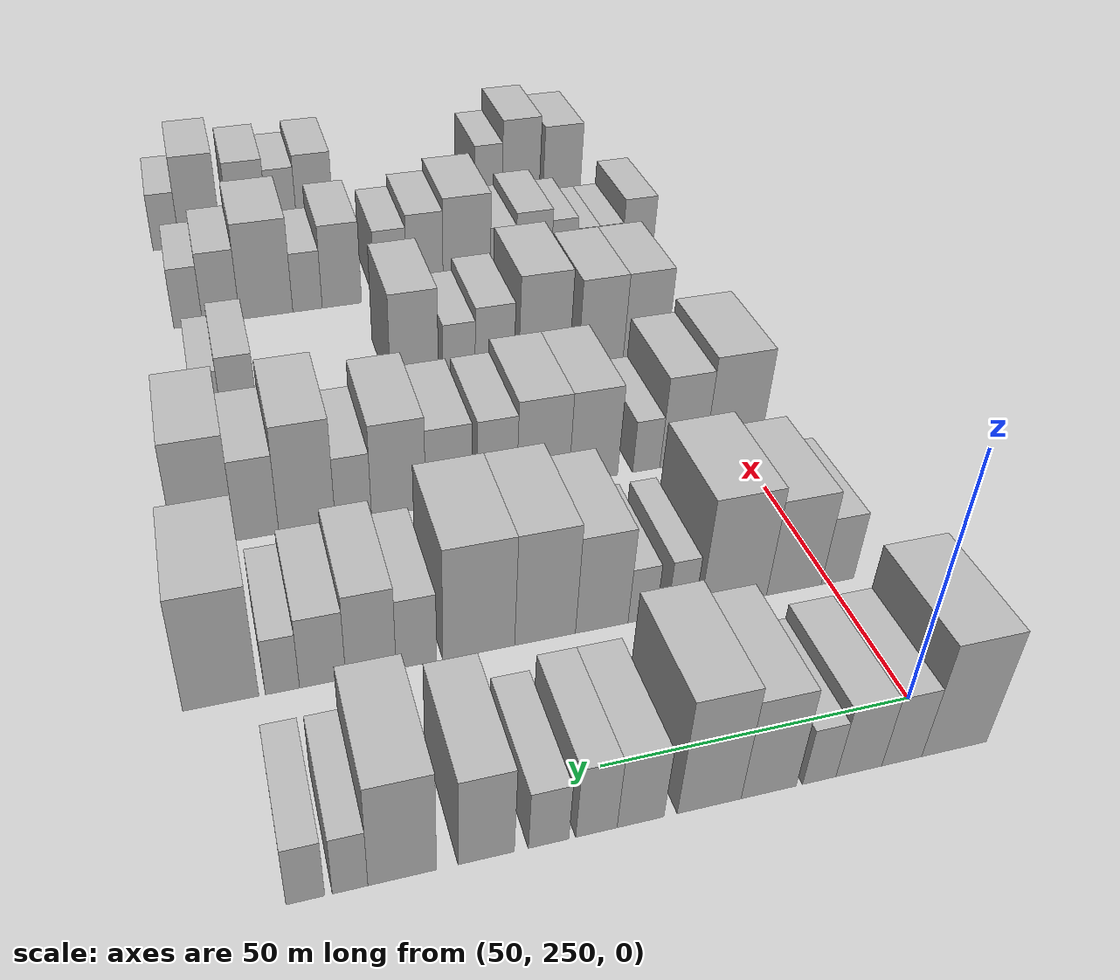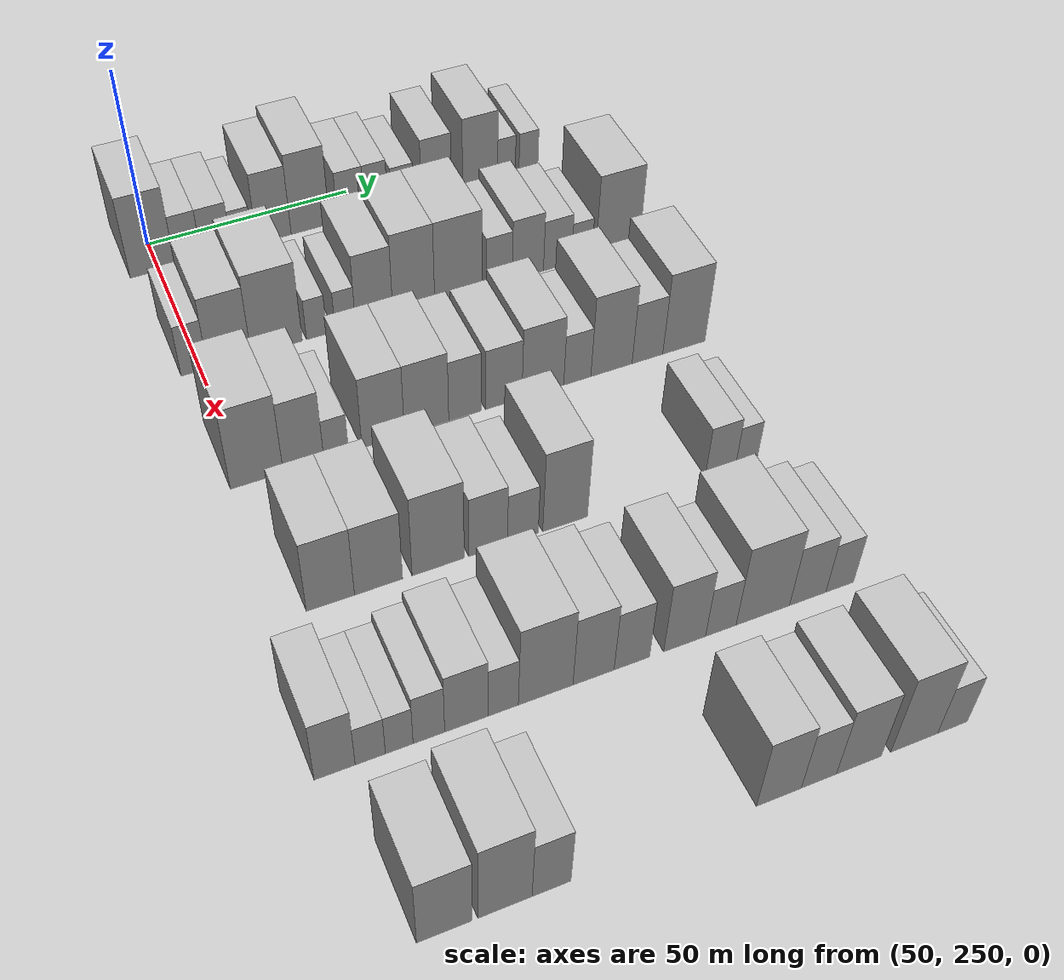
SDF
<sdf version="1.6">
 <world name="default">
  <model name="building_92">
   <static>1</static>
   <pose>50.0000 248.4518 0 0.000000 0.000000 0.000000</pose>
   <link name="link">
    <pose>0 0 12.00 0 0 0</pose>
    <collision name="collision"><geometry><box><size>20.0000 10.7724 24.0000</size></box></geometry></collision>
    <visual name="visual">
     <cast_shadows>0</cast_shadows>
     <geometry><box><size>20.0000 10.7724 24.0000</size></box></geometry>
     <material>
      <script>
       <uri>model://HANNAS_wall/materials/scripts</uri>
       <uri>model://HANNAS_wall/materials/textures</uri>
       <name>vrc/HANNAS_wall</name>
      </script>
     </material>
    </visual>
   </link>
  </model>
  <model name="building_93">
   <static>1</static>
   <pose>50.0000 257.0807 0 0.000000 0.000000 0.000000</pose>
   <link name="link">
    <pose>0 0 7.50 0 0 0</pose>
    <collision name="collision"><geometry><box><size>20.0000 6.4854 15.0000</size></box></geometry></collision>
    <visual name="visual">
     <cast_shadows>0</cast_shadows>
     <geometry><box><size>20.0000 6.4854 15.0000</size></box></geometry>
     <material>
      <script>
       <uri>model://HANNAS_wall/materials/scripts</uri>
       <uri>model://HANNAS_wall/materials/textures</uri>
       <name>vrc/HANNAS_wall</name>
      </script>
     </material>
    </visual>
   </link>
  </model>
  <model name="building_94">
   <static>1</static>
   <pose>50.0000 263.9991 0 0.000000 0.000000 0.000000</pose>
   <link name="link">
    <pose>0 0 7.50 0 0 0</pose>
    <collision name="collision"><geometry><box><size>20.0000 7.3515 15.0000</size></box></geometry></collision>
    <visual name="visual">
     <cast_shadows>0</cast_shadows>
     <geometry><box><size>20.0000 7.3515 15.0000</size></box></geometry>
     <material>
      <script>
       <uri>model://HANNAS_wall/materials/scripts</uri>
       <uri>model://HANNAS_wall/materials/textures</uri>
       <name>vrc/HANNAS_wall</name>
      </script>
     </material>
    </visual>
   </link>
  </model>
  <model name="building_95">
   <static>1</static>
   <pose>50.0000 270.3129 0 0.000000 0.000000 0.000000</pose>
   <link name="link">
    <pose>0 0 6.00 0 0 0</pose>
    <collision name="collision"><geometry><box><size>20.0000 5.2760 12.0000</size></box></geometry></collision>
    <visual name="visual">
     <cast_shadows>0</cast_shadows>
     <geometry><box><size>20.0000 5.2760 12.0000</size></box></geometry>
     <material>
      <script>
       <uri>model://HANNAS_wall/materials/scripts</uri>
       <uri>model://HANNAS_wall/materials/textures</uri>
       <name>vrc/HANNAS_wall</name>
      </script>
     </material>
    </visual>
   </link>
  </model>
  <model name="building_96">
   <static>1</static>
   <pose>50.0000 278.2379 0 0.000000 0.000000 0.000000</pose>
   <link name="link">
    <pose>0 0 10.50 0 0 0</pose>
    <collision name="collision"><geometry><box><size>20.0000 8.5740 21.0000</size></box></geometry></collision>
    <visual name="visual">
     <cast_shadows>0</cast_shadows>
     <geometry><box><size>20.0000 8.5740 21.0000</size></box></geometry>
     <material>
      <script>
       <uri>model://HANNAS_wall/materials/scripts</uri>
       <uri>model://HANNAS_wall/materials/textures</uri>
       <name>vrc/HANNAS_wall</name>
      </script>
     </material>
    </visual>
   </link>
  </model>
  <model name="building_97">
   <static>1</static>
   <pose>50.0000 287.3796 0 0.000000 0.000000 0.000000</pose>
   <link name="link">
    <pose>0 0 12.00 0 0 0</pose>
    <collision name="collision"><geometry><box><size>20.0000 9.7094 24.0000</size></box></geometry></collision>
    <visual name="visual">
     <cast_shadows>0</cast_shadows>
     <geometry><box><size>20.0000 9.7094 24.0000</size></box></geometry>
     <material>
      <script>
       <uri>model://HANNAS_wall/materials/scripts</uri>
       <uri>model://HANNAS_wall/materials/textures</uri>
       <name>vrc/HANNAS_wall</name>
      </script>
     </material>
    </visual>
   </link>
  </model>
  <model name="building_98">
   <static>1</static>
   <pose>50.0000 297.7148 0 0.000000 0.000000 0.000000</pose>
   <link name="link">
    <pose>0 0 7.50 0 0 0</pose>
    <collision name="collision"><geometry><box><size>20.0000 6.9610 15.0000</size></box></geometry></collision>
    <visual name="visual">
     <cast_shadows>0</cast_shadows>
     <geometry><box><size>20.0000 6.9610 15.0000</size></box></geometry>
     <material>
      <script>
       <uri>model://HANNAS_wall/materials/scripts</uri>
       <uri>model://HANNAS_wall/materials/textures</uri>
       <name>vrc/HANNAS_wall</name>
      </script>
     </material>
    </visual>
   </link>
  </model>
  <model name="building_99">
   <static>1</static>
   <pose>50.0000 304.2249 0 0.000000 0.000000 0.000000</pose>
   <link name="link">
    <pose>0 0 7.50 0 0 0</pose>
    <collision name="collision"><geometry><box><size>20.0000 6.0593 15.0000</size></box></geometry></collision>
    <visual name="visual">
     <cast_shadows>0</cast_shadows>
     <geometry><box><size>20.0000 6.0593 15.0000</size></box></geometry>
     <material>
      <script>
       <uri>model://HANNAS_wall/materials/scripts</uri>
       <uri>model://HANNAS_wall/materials/textures</uri>
       <name>vrc/HANNAS_wall</name>
      </script>
     </material>
    </visual>
   </link>
  </model>
  <model name="building_100">
   <static>1</static>
   <pose>50.0000 311.1661 0 0.000000 0.000000 0.000000</pose>
   <link name="link">
    <pose>0 0 6.00 0 0 0</pose>
    <collision name="collision"><geometry><box><size>20.0000 5.8230 12.0000</size></box></geometry></collision>
    <visual name="visual">
     <cast_shadows>0</cast_shadows>
     <geometry><box><size>20.0000 5.8230 12.0000</size></box></geometry>
     <material>
      <script>
       <uri>model://HANNAS_wall/materials/scripts</uri>
       <uri>model://HANNAS_wall/materials/textures</uri>
       <name>vrc/HANNAS_wall</name>
      </script>
     </material>
    </visual>
   </link>
  </model>
  <model name="building_101">
   <static>1</static>
   <pose>50.0000 320.0437 0 0.000000 0.000000 0.000000</pose>
   <link name="link">
    <pose>0 0 9.00 0 0 0</pose>
    <collision name="collision"><geometry><box><size>20.0000 7.9321 18.0000</size></box></geometry></collision>
    <visual name="visual">
     <cast_shadows>0</cast_shadows>
     <geometry><box><size>20.0000 7.9321 18.0000</size></box></geometry>
     <material>
      <script>
       <uri>model://HANNAS_wall/materials/scripts</uri>
       <uri>model://HANNAS_wall/materials/textures</uri>
       <name>vrc/HANNAS_wall</name>
      </script>
     </material>
    </visual>
   </link>
  </model>
  <model name="building_102">
   <static>1</static>
   <pose>50.0000 331.7109 0 0.000000 0.000000 0.000000</pose>
   <link name="link">
    <pose>0 0 10.50 0 0 0</pose>
    <collision name="collision"><geometry><box><size>20.0000 9.4024 21.0000</size></box></geometry></collision>
    <visual name="visual">
     <cast_shadows>0</cast_shadows>
     <geometry><box><size>20.0000 9.4024 21.0000</size></box></geometry>
     <material>
      <script>
       <uri>model://HANNAS_wall/materials/scripts</uri>
       <uri>model://HANNAS_wall/materials/textures</uri>
       <name>vrc/HANNAS_wall</name>
      </script>
     </material>
    </visual>
   </link>
  </model>
  <model name="building_103">
   <static>1</static>
   <pose>50.0000 338.8149 0 0.000000 0.000000 0.000000</pose>
   <link name="link">
    <pose>0 0 6.00 0 0 0</pose>
    <collision name="collision"><geometry><box><size>20.0000 4.8056 12.0000</size></box></geometry></collision>
    <visual name="visual">
     <cast_shadows>0</cast_shadows>
     <geometry><box><size>20.0000 4.8056 12.0000</size></box></geometry>
     <material>
      <script>
       <uri>model://HANNAS_wall/materials/scripts</uri>
       <uri>model://HANNAS_wall/materials/textures</uri>
       <name>vrc/HANNAS_wall</name>
      </script>
     </material>
    </visual>
   </link>
  </model>
  <model name="building_104">
   <static>1</static>
   <pose>50.0000 344.7983 0 0.000000 0.000000 0.000000</pose>
   <link name="link">
    <pose>0 0 6.00 0 0 0</pose>
    <collision name="collision"><geometry><box><size>20.0000 5.1613 12.0000</size></box></geometry></collision>
    <visual name="visual">
     <cast_shadows>0</cast_shadows>
     <geometry><box><size>20.0000 5.1613 12.0000</size></box></geometry>
     <material>
      <script>
       <uri>model://HANNAS_wall/materials/scripts</uri>
       <uri>model://HANNAS_wall/materials/textures</uri>
       <name>vrc/HANNAS_wall</name>
      </script>
     </material>
    </visual>
   </link>
  </model>
  <model name="building_221">
   <static>1</static>
   <pose>85.0000 248.6380 0 0.000000 0.000000 0.000000</pose>
   <link name="link">
    <pose>0 0 7.50 0 0 0</pose>
    <collision name="collision"><geometry><box><size>20.0000 6.0605 15.0000</size></box></geometry></collision>
    <visual name="visual">
     <cast_shadows>0</cast_shadows>
     <geometry><box><size>20.0000 6.0605 15.0000</size></box></geometry>
     <material>
      <script>
       <uri>model://HANNAS_wall/materials/scripts</uri>
       <uri>model://HANNAS_wall/materials/textures</uri>
       <name>vrc/HANNAS_wall</name>
      </script>
     </material>
    </visual>
   </link>
  </model>
  <model name="building_222">
   <static>1</static>
   <pose>85.0000 256.6987 0 0.000000 0.000000 0.000000</pose>
   <link name="link">
    <pose>0 0 10.50 0 0 0</pose>
    <collision name="collision"><geometry><box><size>20.0000 10.0609 21.0000</size></box></geometry></collision>
    <visual name="visual">
     <cast_shadows>0</cast_shadows>
     <geometry><box><size>20.0000 10.0609 21.0000</size></box></geometry>
     <material>
      <script>
       <uri>model://HANNAS_wall/materials/scripts</uri>
       <uri>model://HANNAS_wall/materials/textures</uri>
       <name>vrc/HANNAS_wall</name>
      </script>
     </material>
    </visual>
   </link>
  </model>
  <model name="building_223">
   <static>1</static>
   <pose>85.0000 267.7092 0 0.000000 0.000000 0.000000</pose>
   <link name="link">
    <pose>0 0 12.00 0 0 0</pose>
    <collision name="collision"><geometry><box><size>20.0000 11.9600 24.0000</size></box></geometry></collision>
    <visual name="visual">
     <cast_shadows>0</cast_shadows>
     <geometry><box><size>20.0000 11.9600 24.0000</size></box></geometry>
     <material>
      <script>
       <uri>model://HANNAS_wall/materials/scripts</uri>
       <uri>model://HANNAS_wall/materials/textures</uri>
       <name>vrc/HANNAS_wall</name>
      </script>
     </material>
    </visual>
   </link>
  </model>
  <model name="building_224">
   <static>1</static>
   <pose>85.0000 277.0991 0 0.000000 0.000000 0.000000</pose>
   <link name="link">
    <pose>0 0 6.00 0 0 0</pose>
    <collision name="collision"><geometry><box><size>20.0000 4.8198 12.0000</size></box></geometry></collision>
    <visual name="visual">
     <cast_shadows>0</cast_shadows>
     <geometry><box><size>20.0000 4.8198 12.0000</size></box></geometry>
     <material>
      <script>
       <uri>model://HANNAS_wall/materials/scripts</uri>
       <uri>model://HANNAS_wall/materials/textures</uri>
       <name>vrc/HANNAS_wall</name>
      </script>
     </material>
    </visual>
   </link>
  </model>
  <model name="building_225">
   <static>1</static>
   <pose>85.0000 283.9612 0 0.000000 0.000000 0.000000</pose>
   <link name="link">
    <pose>0 0 6.00 0 0 0</pose>
    <collision name="collision"><geometry><box><size>20.0000 4.9043 12.0000</size></box></geometry></collision>
    <visual name="visual">
     <cast_shadows>0</cast_shadows>
     <geometry><box><size>20.0000 4.9043 12.0000</size></box></geometry>
     <material>
      <script>
       <uri>model://HANNAS_wall/materials/scripts</uri>
       <uri>model://HANNAS_wall/materials/textures</uri>
       <name>vrc/HANNAS_wall</name>
      </script>
     </material>
    </visual>
   </link>
  </model>
  <model name="building_226">
   <static>1</static>
   <pose>85.0000 290.9372 0 0.000000 0.000000 0.000000</pose>
   <link name="link">
    <pose>0 0 10.50 0 0 0</pose>
    <collision name="collision"><geometry><box><size>20.0000 9.0478 21.0000</size></box></geometry></collision>
    <visual name="visual">
     <cast_shadows>0</cast_shadows>
     <geometry><box><size>20.0000 9.0478 21.0000</size></box></geometry>
     <material>
      <script>
       <uri>model://HANNAS_wall/materials/scripts</uri>
       <uri>model://HANNAS_wall/materials/textures</uri>
       <name>vrc/HANNAS_wall</name>
      </script>
     </material>
    </visual>
   </link>
  </model>
  <model name="building_227">
   <static>1</static>
   <pose>85.0000 300.6031 0 0.000000 0.000000 0.000000</pose>
   <link name="link">
    <pose>0 0 12.00 0 0 0</pose>
    <collision name="collision"><geometry><box><size>20.0000 10.2840 24.0000</size></box></geometry></collision>
    <visual name="visual">
     <cast_shadows>0</cast_shadows>
     <geometry><box><size>20.0000 10.2840 24.0000</size></box></geometry>
     <material>
      <script>
       <uri>model://HANNAS_wall/materials/scripts</uri>
       <uri>model://HANNAS_wall/materials/textures</uri>
       <name>vrc/HANNAS_wall</name>
      </script>
     </material>
    </visual>
   </link>
  </model>
  <model name="building_228">
   <static>1</static>
   <pose>85.0000 311.6784 0 0.000000 0.000000 0.000000</pose>
   <link name="link">
    <pose>0 0 12.00 0 0 0</pose>
    <collision name="collision"><geometry><box><size>20.0000 11.8667 24.0000</size></box></geometry></collision>
    <visual name="visual">
     <cast_shadows>0</cast_shadows>
     <geometry><box><size>20.0000 11.8667 24.0000</size></box></geometry>
     <material>
      <script>
       <uri>model://HANNAS_wall/materials/scripts</uri>
       <uri>model://HANNAS_wall/materials/textures</uri>
       <name>vrc/HANNAS_wall</name>
      </script>
     </material>
    </visual>
   </link>
  </model>
  <model name="building_229">
   <static>1</static>
   <pose>85.0000 321.8944 0 0.000000 0.000000 0.000000</pose>
   <link name="link">
    <pose>0 0 7.50 0 0 0</pose>
    <collision name="collision"><geometry><box><size>20.0000 6.5652 15.0000</size></box></geometry></collision>
    <visual name="visual">
     <cast_shadows>0</cast_shadows>
     <geometry><box><size>20.0000 6.5652 15.0000</size></box></geometry>
     <material>
      <script>
       <uri>model://HANNAS_wall/materials/scripts</uri>
       <uri>model://HANNAS_wall/materials/textures</uri>
       <name>vrc/HANNAS_wall</name>
      </script>
     </material>
    </visual>
   </link>
  </model>
  <model name="building_230">
   <static>1</static>
   <pose>85.0000 329.1814 0 0.000000 0.000000 0.000000</pose>
   <link name="link">
    <pose>0 0 9.00 0 0 0</pose>
    <collision name="collision"><geometry><box><size>20.0000 8.0089 18.0000</size></box></geometry></collision>
    <visual name="visual">
     <cast_shadows>0</cast_shadows>
     <geometry><box><size>20.0000 8.0089 18.0000</size></box></geometry>
     <material>
      <script>
       <uri>model://HANNAS_wall/materials/scripts</uri>
       <uri>model://HANNAS_wall/materials/textures</uri>
       <name>vrc/HANNAS_wall</name>
      </script>
     </material>
    </visual>
   </link>
  </model>
  <model name="building_231">
   <static>1</static>
   <pose>85.0000 336.8193 0 0.000000 0.000000 0.000000</pose>
   <link name="link">
    <pose>0 0 7.50 0 0 0</pose>
    <collision name="collision"><geometry><box><size>20.0000 7.2669 15.0000</size></box></geometry></collision>
    <visual name="visual">
     <cast_shadows>0</cast_shadows>
     <geometry><box><size>20.0000 7.2669 15.0000</size></box></geometry>
     <material>
      <script>
       <uri>model://HANNAS_wall/materials/scripts</uri>
       <uri>model://HANNAS_wall/materials/textures</uri>
       <name>vrc/HANNAS_wall</name>
      </script>
     </material>
    </visual>
   </link>
  </model>
  <model name="building_232">
   <static>1</static>
   <pose>85.0000 343.1009 0 0.000000 0.000000 0.000000</pose>
   <link name="link">
    <pose>0 0 6.00 0 0 0</pose>
    <collision name="collision"><geometry><box><size>20.0000 5.2963 12.0000</size></box></geometry></collision>
    <visual name="visual">
     <cast_shadows>0</cast_shadows>
     <geometry><box><size>20.0000 5.2963 12.0000</size></box></geometry>
     <material>
      <script>
       <uri>model://HANNAS_wall/materials/scripts</uri>
       <uri>model://HANNAS_wall/materials/textures</uri>
       <name>vrc/HANNAS_wall</name>
      </script>
     </material>
    </visual>
   </link>
  </model>
  <model name="building_233">
   <static>1</static>
   <pose>85.0000 352.5402 0 0.000000 0.000000 0.000000</pose>
   <link name="link">
    <pose>0 0 12.00 0 0 0</pose>
    <collision name="collision"><geometry><box><size>20.0000 11.5823 24.0000</size></box></geometry></collision>
    <visual name="visual">
     <cast_shadows>0</cast_shadows>
     <geometry><box><size>20.0000 11.5823 24.0000</size></box></geometry>
     <material>
      <script>
       <uri>model://HANNAS_wall/materials/scripts</uri>
       <uri>model://HANNAS_wall/materials/textures</uri>
       <name>vrc/HANNAS_wall</name>
      </script>
     </material>
    </visual>
   </link>
  </model>
  <model name="building_348">
   <static>1</static>
   <pose>120.0000 252.1516 0 0.000000 0.000000 0.000000</pose>
   <link name="link">
    <pose>0 0 12.00 0 0 0</pose>
    <collision name="collision"><geometry><box><size>20.0000 11.4827 24.0000</size></box></geometry></collision>
    <visual name="visual">
     <cast_shadows>0</cast_shadows>
     <geometry><box><size>20.0000 11.4827 24.0000</size></box></geometry>
     <material>
      <script>
       <uri>model://HANNAS_wall/materials/scripts</uri>
       <uri>model://HANNAS_wall/materials/textures</uri>
       <name>vrc/HANNAS_wall</name>
      </script>
     </material>
    </visual>
   </link>
  </model>
  <model name="building_349">
   <static>1</static>
   <pose>120.0000 262.3679 0 0.000000 0.000000 0.000000</pose>
   <link name="link">
    <pose>0 0 10.50 0 0 0</pose>
    <collision name="collision"><geometry><box><size>20.0000 8.9498 21.0000</size></box></geometry></collision>
    <visual name="visual">
     <cast_shadows>0</cast_shadows>
     <geometry><box><size>20.0000 8.9498 21.0000</size></box></geometry>
     <material>
      <script>
       <uri>model://HANNAS_wall/materials/scripts</uri>
       <uri>model://HANNAS_wall/materials/textures</uri>
       <name>vrc/HANNAS_wall</name>
      </script>
     </material>
    </visual>
   </link>
  </model>
  <model name="building_350">
   <static>1</static>
   <pose>120.0000 269.5847 0 0.000000 0.000000 0.000000</pose>
   <link name="link">
    <pose>0 0 6.00 0 0 0</pose>
    <collision name="collision"><geometry><box><size>20.0000 5.4839 12.0000</size></box></geometry></collision>
    <visual name="visual">
     <cast_shadows>0</cast_shadows>
     <geometry><box><size>20.0000 5.4839 12.0000</size></box></geometry>
     <material>
      <script>
       <uri>model://HANNAS_wall/materials/scripts</uri>
       <uri>model://HANNAS_wall/materials/textures</uri>
       <name>vrc/HANNAS_wall</name>
      </script>
     </material>
    </visual>
   </link>
  </model>
  <model name="building_351">
   <static>1</static>
   <pose>120.0000 280.1430 0 0.000000 0.000000 0.000000</pose>
   <link name="link">
    <pose>0 0 10.50 0 0 0</pose>
    <collision name="collision"><geometry><box><size>20.0000 9.6328 21.0000</size></box></geometry></collision>
    <visual name="visual">
     <cast_shadows>0</cast_shadows>
     <geometry><box><size>20.0000 9.6328 21.0000</size></box></geometry>
     <material>
      <script>
       <uri>model://HANNAS_wall/materials/scripts</uri>
       <uri>model://HANNAS_wall/materials/textures</uri>
       <name>vrc/HANNAS_wall</name>
      </script>
     </material>
    </visual>
   </link>
  </model>
  <model name="building_352">
   <static>1</static>
   <pose>120.0000 290.0397 0 0.000000 0.000000 0.000000</pose>
   <link name="link">
    <pose>0 0 10.50 0 0 0</pose>
    <collision name="collision"><geometry><box><size>20.0000 10.1607 21.0000</size></box></geometry></collision>
    <visual name="visual">
     <cast_shadows>0</cast_shadows>
     <geometry><box><size>20.0000 10.1607 21.0000</size></box></geometry>
     <material>
      <script>
       <uri>model://HANNAS_wall/materials/scripts</uri>
       <uri>model://HANNAS_wall/materials/textures</uri>
       <name>vrc/HANNAS_wall</name>
      </script>
     </material>
    </visual>
   </link>
  </model>
  <model name="building_353">
   <static>1</static>
   <pose>120.0000 298.8995 0 0.000000 0.000000 0.000000</pose>
   <link name="link">
    <pose>0 0 9.00 0 0 0</pose>
    <collision name="collision"><geometry><box><size>20.0000 7.5589 18.0000</size></box></geometry></collision>
    <visual name="visual">
     <cast_shadows>0</cast_shadows>
     <geometry><box><size>20.0000 7.5589 18.0000</size></box></geometry>
     <material>
      <script>
       <uri>model://HANNAS_wall/materials/scripts</uri>
       <uri>model://HANNAS_wall/materials/textures</uri>
       <name>vrc/HANNAS_wall</name>
      </script>
     </material>
    </visual>
   </link>
  </model>
  <model name="building_354">
   <static>1</static>
   <pose>120.0000 307.9807 0 0.000000 0.000000 0.000000</pose>
   <link name="link">
    <pose>0 0 9.00 0 0 0</pose>
    <collision name="collision"><geometry><box><size>20.0000 8.6036 18.0000</size></box></geometry></collision>
    <visual name="visual">
     <cast_shadows>0</cast_shadows>
     <geometry><box><size>20.0000 8.6036 18.0000</size></box></geometry>
     <material>
      <script>
       <uri>model://HANNAS_wall/materials/scripts</uri>
       <uri>model://HANNAS_wall/materials/textures</uri>
       <name>vrc/HANNAS_wall</name>
      </script>
     </material>
    </visual>
   </link>
  </model>
  <model name="building_355">
   <static>1</static>
   <pose>120.0000 317.2840 0 0.000000 0.000000 0.000000</pose>
   <link name="link">
    <pose>0 0 10.50 0 0 0</pose>
    <collision name="collision"><geometry><box><size>20.0000 10.0029 21.0000</size></box></geometry></collision>
    <visual name="visual">
     <cast_shadows>0</cast_shadows>
     <geometry><box><size>20.0000 10.0029 21.0000</size></box></geometry>
     <material>
      <script>
       <uri>model://HANNAS_wall/materials/scripts</uri>
       <uri>model://HANNAS_wall/materials/textures</uri>
       <name>vrc/HANNAS_wall</name>
      </script>
     </material>
    </visual>
   </link>
  </model>
  <model name="building_356">
   <static>1</static>
   <pose>120.0000 325.5808 0 0.000000 0.000000 0.000000</pose>
   <link name="link">
    <pose>0 0 7.50 0 0 0</pose>
    <collision name="collision"><geometry><box><size>20.0000 6.5908 15.0000</size></box></geometry></collision>
    <visual name="visual">
     <cast_shadows>0</cast_shadows>
     <geometry><box><size>20.0000 6.5908 15.0000</size></box></geometry>
     <material>
      <script>
       <uri>model://HANNAS_wall/materials/scripts</uri>
       <uri>model://HANNAS_wall/materials/textures</uri>
       <name>vrc/HANNAS_wall</name>
      </script>
     </material>
    </visual>
   </link>
  </model>
  <model name="building_357">
   <static>1</static>
   <pose>120.0000 333.9369 0 0.000000 0.000000 0.000000</pose>
   <link name="link">
    <pose>0 0 12.00 0 0 0</pose>
    <collision name="collision"><geometry><box><size>20.0000 10.1213 24.0000</size></box></geometry></collision>
    <visual name="visual">
     <cast_shadows>0</cast_shadows>
     <geometry><box><size>20.0000 10.1213 24.0000</size></box></geometry>
     <material>
      <script>
       <uri>model://HANNAS_wall/materials/scripts</uri>
       <uri>model://HANNAS_wall/materials/textures</uri>
       <name>vrc/HANNAS_wall</name>
      </script>
     </material>
    </visual>
   </link>
  </model>
  <model name="building_358">
   <static>1</static>
   <pose>120.0000 342.8202 0 0.000000 0.000000 0.000000</pose>
   <link name="link">
    <pose>0 0 9.00 0 0 0</pose>
    <collision name="collision"><geometry><box><size>20.0000 7.6455 18.0000</size></box></geometry></collision>
    <visual name="visual">
     <cast_shadows>0</cast_shadows>
     <geometry><box><size>20.0000 7.6455 18.0000</size></box></geometry>
     <material>
      <script>
       <uri>model://HANNAS_wall/materials/scripts</uri>
       <uri>model://HANNAS_wall/materials/textures</uri>
       <name>vrc/HANNAS_wall</name>
      </script>
     </material>
    </visual>
   </link>
  </model>
  <model name="building_359">
   <static>1</static>
   <pose>120.0000 351.9500 0 0.000000 0.000000 0.000000</pose>
   <link name="link">
    <pose>0 0 12.00 0 0 0</pose>
    <collision name="collision"><geometry><box><size>20.0000 10.6140 24.0000</size></box></geometry></collision>
    <visual name="visual">
     <cast_shadows>0</cast_shadows>
     <geometry><box><size>20.0000 10.6140 24.0000</size></box></geometry>
     <material>
      <script>
       <uri>model://HANNAS_wall/materials/scripts</uri>
       <uri>model://HANNAS_wall/materials/textures</uri>
       <name>vrc/HANNAS_wall</name>
      </script>
     </material>
    </visual>
   </link>
  </model>
  <model name="building_478">
   <static>1</static>
   <pose>155.0000 256.1997 0 0.000000 0.000000 0.000000</pose>
   <link name="link">
    <pose>0 0 10.50 0 0 0</pose>
    <collision name="collision"><geometry><box><size>20.0000 9.9110 21.0000</size></box></geometry></collision>
    <visual name="visual">
     <cast_shadows>0</cast_shadows>
     <geometry><box><size>20.0000 9.9110 21.0000</size></box></geometry>
     <material>
      <script>
       <uri>model://HANNAS_wall/materials/scripts</uri>
       <uri>model://HANNAS_wall/materials/textures</uri>
       <name>vrc/HANNAS_wall</name>
      </script>
     </material>
    </visual>
   </link>
  </model>
  <model name="building_479">
   <static>1</static>
   <pose>155.0000 266.1842 0 0.000000 0.000000 0.000000</pose>
   <link name="link">
    <pose>0 0 10.50 0 0 0</pose>
    <collision name="collision"><geometry><box><size>20.0000 10.0580 21.0000</size></box></geometry></collision>
    <visual name="visual">
     <cast_shadows>0</cast_shadows>
     <geometry><box><size>20.0000 10.0580 21.0000</size></box></geometry>
     <material>
      <script>
       <uri>model://HANNAS_wall/materials/scripts</uri>
       <uri>model://HANNAS_wall/materials/textures</uri>
       <name>vrc/HANNAS_wall</name>
      </script>
     </material>
    </visual>
   </link>
  </model>
  <model name="building_480">
   <static>1</static>
   <pose>155.0000 278.7809 0 0.000000 0.000000 0.000000</pose>
   <link name="link">
    <pose>0 0 12.00 0 0 0</pose>
    <collision name="collision"><geometry><box><size>20.0000 11.1353 24.0000</size></box></geometry></collision>
    <visual name="visual">
     <cast_shadows>0</cast_shadows>
     <geometry><box><size>20.0000 11.1353 24.0000</size></box></geometry>
     <material>
      <script>
       <uri>model://HANNAS_wall/materials/scripts</uri>
       <uri>model://HANNAS_wall/materials/textures</uri>
       <name>vrc/HANNAS_wall</name>
      </script>
     </material>
    </visual>
   </link>
  </model>
  <model name="building_481">
   <static>1</static>
   <pose>155.0000 289.5349 0 0.000000 0.000000 0.000000</pose>
   <link name="link">
    <pose>0 0 9.00 0 0 0</pose>
    <collision name="collision"><geometry><box><size>20.0000 8.3727 18.0000</size></box></geometry></collision>
    <visual name="visual">
     <cast_shadows>0</cast_shadows>
     <geometry><box><size>20.0000 8.3727 18.0000</size></box></geometry>
     <material>
      <script>
       <uri>model://HANNAS_wall/materials/scripts</uri>
       <uri>model://HANNAS_wall/materials/textures</uri>
       <name>vrc/HANNAS_wall</name>
      </script>
     </material>
    </visual>
   </link>
  </model>
  <model name="building_482">
   <static>1</static>
   <pose>155.0000 297.1105 0 0.000000 0.000000 0.000000</pose>
   <link name="link">
    <pose>0 0 7.50 0 0 0</pose>
    <collision name="collision"><geometry><box><size>20.0000 6.7786 15.0000</size></box></geometry></collision>
    <visual name="visual">
     <cast_shadows>0</cast_shadows>
     <geometry><box><size>20.0000 6.7786 15.0000</size></box></geometry>
     <material>
      <script>
       <uri>model://HANNAS_wall/materials/scripts</uri>
       <uri>model://HANNAS_wall/materials/textures</uri>
       <name>vrc/HANNAS_wall</name>
      </script>
     </material>
    </visual>
   </link>
  </model>
  <model name="building_483">
   <static>1</static>
   <pose>155.0000 306.4967 0 0.000000 0.000000 0.000000</pose>
   <link name="link">
    <pose>0 0 12.00 0 0 0</pose>
    <collision name="collision"><geometry><box><size>20.0000 9.9936 24.0000</size></box></geometry></collision>
    <visual name="visual">
     <cast_shadows>0</cast_shadows>
     <geometry><box><size>20.0000 9.9936 24.0000</size></box></geometry>
     <material>
      <script>
       <uri>model://HANNAS_wall/materials/scripts</uri>
       <uri>model://HANNAS_wall/materials/textures</uri>
       <name>vrc/HANNAS_wall</name>
      </script>
     </material>
    </visual>
   </link>
  </model>
  <model name="building_484">
   <static>1</static>
   <pose>155.0000 342.2031 0 0.000000 0.000000 0.000000</pose>
   <link name="link">
    <pose>0 0 7.50 0 0 0</pose>
    <collision name="collision"><geometry><box><size>20.0000 7.1398 15.0000</size></box></geometry></collision>
    <visual name="visual">
     <cast_shadows>0</cast_shadows>
     <geometry><box><size>20.0000 7.1398 15.0000</size></box></geometry>
     <material>
      <script>
       <uri>model://HANNAS_wall/materials/scripts</uri>
       <uri>model://HANNAS_wall/materials/textures</uri>
       <name>vrc/HANNAS_wall</name>
      </script>
     </material>
    </visual>
   </link>
  </model>
  <model name="building_485">
   <static>1</static>
   <pose>155.0000 348.3482 0 0.000000 0.000000 0.000000</pose>
   <link name="link">
    <pose>0 0 6.00 0 0 0</pose>
    <collision name="collision"><geometry><box><size>20.0000 5.1505 12.0000</size></box></geometry></collision>
    <visual name="visual">
     <cast_shadows>0</cast_shadows>
     <geometry><box><size>20.0000 5.1505 12.0000</size></box></geometry>
     <material>
      <script>
       <uri>model://HANNAS_wall/materials/scripts</uri>
       <uri>model://HANNAS_wall/materials/textures</uri>
       <name>vrc/HANNAS_wall</name>
      </script>
     </material>
    </visual>
   </link>
  </model>
  <model name="building_590">
   <static>1</static>
   <pose>190.0000 244.8940 0 0.000000 0.000000 0.000000</pose>
   <link name="link">
    <pose>0 0 9.00 0 0 0</pose>
    <collision name="collision"><geometry><box><size>20.0000 7.7876 18.0000</size></box></geometry></collision>
    <visual name="visual">
     <cast_shadows>0</cast_shadows>
     <geometry><box><size>20.0000 7.7876 18.0000</size></box></geometry>
     <material>
      <script>
       <uri>model://HANNAS_wall/materials/scripts</uri>
       <uri>model://HANNAS_wall/materials/textures</uri>
       <name>vrc/HANNAS_wall</name>
      </script>
     </material>
    </visual>
   </link>
  </model>
  <model name="building_591">
   <static>1</static>
   <pose>190.0000 251.6846 0 0.000000 0.000000 0.000000</pose>
   <link name="link">
    <pose>0 0 6.00 0 0 0</pose>
    <collision name="collision"><geometry><box><size>20.0000 5.7935 12.0000</size></box></geometry></collision>
    <visual name="visual">
     <cast_shadows>0</cast_shadows>
     <geometry><box><size>20.0000 5.7935 12.0000</size></box></geometry>
     <material>
      <script>
       <uri>model://HANNAS_wall/materials/scripts</uri>
       <uri>model://HANNAS_wall/materials/textures</uri>
       <name>vrc/HANNAS_wall</name>
      </script>
     </material>
    </visual>
   </link>
  </model>
  <model name="building_592">
   <static>1</static>
   <pose>190.0000 257.2634 0 0.000000 0.000000 0.000000</pose>
   <link name="link">
    <pose>0 0 6.00 0 0 0</pose>
    <collision name="collision"><geometry><box><size>20.0000 5.3643 12.0000</size></box></geometry></collision>
    <visual name="visual">
     <cast_shadows>0</cast_shadows>
     <geometry><box><size>20.0000 5.3643 12.0000</size></box></geometry>
     <material>
      <script>
       <uri>model://HANNAS_wall/materials/scripts</uri>
       <uri>model://HANNAS_wall/materials/textures</uri>
       <name>vrc/HANNAS_wall</name>
      </script>
     </material>
    </visual>
   </link>
  </model>
  <model name="building_593">
   <static>1</static>
   <pose>190.0000 263.0335 0 0.000000 0.000000 0.000000</pose>
   <link name="link">
    <pose>0 0 7.50 0 0 0</pose>
    <collision name="collision"><geometry><box><size>20.0000 6.1759 15.0000</size></box></geometry></collision>
    <visual name="visual">
     <cast_shadows>0</cast_shadows>
     <geometry><box><size>20.0000 6.1759 15.0000</size></box></geometry>
     <material>
      <script>
       <uri>model://HANNAS_wall/materials/scripts</uri>
       <uri>model://HANNAS_wall/materials/textures</uri>
       <name>vrc/HANNAS_wall</name>
      </script>
     </material>
    </visual>
   </link>
  </model>
  <model name="building_594">
   <static>1</static>
   <pose>190.0000 270.4166 0 0.000000 0.000000 0.000000</pose>
   <link name="link">
    <pose>0 0 9.00 0 0 0</pose>
    <collision name="collision"><geometry><box><size>20.0000 8.5903 18.0000</size></box></geometry></collision>
    <visual name="visual">
     <cast_shadows>0</cast_shadows>
     <geometry><box><size>20.0000 8.5903 18.0000</size></box></geometry>
     <material>
      <script>
       <uri>model://HANNAS_wall/materials/scripts</uri>
       <uri>model://HANNAS_wall/materials/textures</uri>
       <name>vrc/HANNAS_wall</name>
      </script>
     </material>
    </visual>
   </link>
  </model>
  <model name="building_595">
   <static>1</static>
   <pose>190.0000 277.7564 0 0.000000 0.000000 0.000000</pose>
   <link name="link">
    <pose>0 0 7.50 0 0 0</pose>
    <collision name="collision"><geometry><box><size>20.0000 6.0893 15.0000</size></box></geometry></collision>
    <visual name="visual">
     <cast_shadows>0</cast_shadows>
     <geometry><box><size>20.0000 6.0893 15.0000</size></box></geometry>
     <material>
      <script>
       <uri>model://HANNAS_wall/materials/scripts</uri>
       <uri>model://HANNAS_wall/materials/textures</uri>
       <name>vrc/HANNAS_wall</name>
      </script>
     </material>
    </visual>
   </link>
  </model>
  <model name="building_596">
   <static>1</static>
   <pose>190.0000 286.3762 0 0.000000 0.000000 0.000000</pose>
   <link name="link">
    <pose>0 0 12.00 0 0 0</pose>
    <collision name="collision"><geometry><box><size>20.0000 11.1502 24.0000</size></box></geometry></collision>
    <visual name="visual">
     <cast_shadows>0</cast_shadows>
     <geometry><box><size>20.0000 11.1502 24.0000</size></box></geometry>
     <material>
      <script>
       <uri>model://HANNAS_wall/materials/scripts</uri>
       <uri>model://HANNAS_wall/materials/textures</uri>
       <name>vrc/HANNAS_wall</name>
      </script>
     </material>
    </visual>
   </link>
  </model>
  <model name="building_597">
   <static>1</static>
   <pose>190.0000 296.2208 0 0.000000 0.000000 0.000000</pose>
   <link name="link">
    <pose>0 0 10.50 0 0 0</pose>
    <collision name="collision"><geometry><box><size>20.0000 8.5390 21.0000</size></box></geometry></collision>
    <visual name="visual">
     <cast_shadows>0</cast_shadows>
     <geometry><box><size>20.0000 8.5390 21.0000</size></box></geometry>
     <material>
      <script>
       <uri>model://HANNAS_wall/materials/scripts</uri>
       <uri>model://HANNAS_wall/materials/textures</uri>
       <name>vrc/HANNAS_wall</name>
      </script>
     </material>
    </visual>
   </link>
  </model>
  <model name="building_598">
   <static>1</static>
   <pose>190.0000 304.2266 0 0.000000 0.000000 0.000000</pose>
   <link name="link">
    <pose>0 0 9.00 0 0 0</pose>
    <collision name="collision"><geometry><box><size>20.0000 7.4726 18.0000</size></box></geometry></collision>
    <visual name="visual">
     <cast_shadows>0</cast_shadows>
     <geometry><box><size>20.0000 7.4726 18.0000</size></box></geometry>
     <material>
      <script>
       <uri>model://HANNAS_wall/materials/scripts</uri>
       <uri>model://HANNAS_wall/materials/textures</uri>
       <name>vrc/HANNAS_wall</name>
      </script>
     </material>
    </visual>
   </link>
  </model>
  <model name="building_599">
   <static>1</static>
   <pose>190.0000 315.4548 0 0.000000 0.000000 0.000000</pose>
   <link name="link">
    <pose>0 0 10.50 0 0 0</pose>
    <collision name="collision"><geometry><box><size>20.0000 8.9837 21.0000</size></box></geometry></collision>
    <visual name="visual">
     <cast_shadows>0</cast_shadows>
     <geometry><box><size>20.0000 8.9837 21.0000</size></box></geometry>
     <material>
      <script>
       <uri>model://HANNAS_wall/materials/scripts</uri>
       <uri>model://HANNAS_wall/materials/textures</uri>
       <name>vrc/HANNAS_wall</name>
      </script>
     </material>
    </visual>
   </link>
  </model>
  <model name="building_600">
   <static>1</static>
   <pose>190.0000 323.2701 0 0.000000 0.000000 0.000000</pose>
   <link name="link">
    <pose>0 0 7.50 0 0 0</pose>
    <collision name="collision"><geometry><box><size>20.0000 6.6469 15.0000</size></box></geometry></collision>
    <visual name="visual">
     <cast_shadows>0</cast_shadows>
     <geometry><box><size>20.0000 6.6469 15.0000</size></box></geometry>
     <material>
      <script>
       <uri>model://HANNAS_wall/materials/scripts</uri>
       <uri>model://HANNAS_wall/materials/textures</uri>
       <name>vrc/HANNAS_wall</name>
      </script>
     </material>
    </visual>
   </link>
  </model>
  <model name="building_601">
   <static>1</static>
   <pose>190.0000 332.5043 0 0.000000 0.000000 0.000000</pose>
   <link name="link">
    <pose>0 0 12.00 0 0 0</pose>
    <collision name="collision"><geometry><box><size>20.0000 11.8215 24.0000</size></box></geometry></collision>
    <visual name="visual">
     <cast_shadows>0</cast_shadows>
     <geometry><box><size>20.0000 11.8215 24.0000</size></box></geometry>
     <material>
      <script>
       <uri>model://HANNAS_wall/materials/scripts</uri>
       <uri>model://HANNAS_wall/materials/textures</uri>
       <name>vrc/HANNAS_wall</name>
      </script>
     </material>
    </visual>
   </link>
  </model>
  <model name="building_602">
   <static>1</static>
   <pose>190.0000 342.4940 0 0.000000 0.000000 0.000000</pose>
   <link name="link">
    <pose>0 0 9.00 0 0 0</pose>
    <collision name="collision"><geometry><box><size>20.0000 8.1578 18.0000</size></box></geometry></collision>
    <visual name="visual">
     <cast_shadows>0</cast_shadows>
     <geometry><box><size>20.0000 8.1578 18.0000</size></box></geometry>
     <material>
      <script>
       <uri>model://HANNAS_wall/materials/scripts</uri>
       <uri>model://HANNAS_wall/materials/textures</uri>
       <name>vrc/HANNAS_wall</name>
      </script>
     </material>
    </visual>
   </link>
  </model>
  <model name="building_603">
   <static>1</static>
   <pose>190.0000 349.7199 0 0.000000 0.000000 0.000000</pose>
   <link name="link">
    <pose>0 0 7.50 0 0 0</pose>
    <collision name="collision"><geometry><box><size>20.0000 6.2942 15.0000</size></box></geometry></collision>
    <visual name="visual">
     <cast_shadows>0</cast_shadows>
     <geometry><box><size>20.0000 6.2942 15.0000</size></box></geometry>
     <material>
      <script>
       <uri>model://HANNAS_wall/materials/scripts</uri>
       <uri>model://HANNAS_wall/materials/textures</uri>
       <name>vrc/HANNAS_wall</name>
      </script>
     </material>
    </visual>
   </link>
  </model>
  <model name="building_724">
   <static>1</static>
   <pose>225.0000 252.0708 0 0.000000 0.000000 0.000000</pose>
   <link name="link">
    <pose>0 0 10.50 0 0 0</pose>
    <collision name="collision"><geometry><box><size>20.0000 10.0422 21.0000</size></box></geometry></collision>
    <visual name="visual">
     <cast_shadows>0</cast_shadows>
     <geometry><box><size>20.0000 10.0422 21.0000</size></box></geometry>
     <material>
      <script>
       <uri>model://HANNAS_wall/materials/scripts</uri>
       <uri>model://HANNAS_wall/materials/textures</uri>
       <name>vrc/HANNAS_wall</name>
      </script>
     </material>
    </visual>
   </link>
  </model>
  <model name="building_725">
   <static>1</static>
   <pose>225.0000 263.0678 0 0.000000 0.000000 0.000000</pose>
   <link name="link">
    <pose>0 0 12.00 0 0 0</pose>
    <collision name="collision"><geometry><box><size>20.0000 9.9519 24.0000</size></box></geometry></collision>
    <visual name="visual">
     <cast_shadows>0</cast_shadows>
     <geometry><box><size>20.0000 9.9519 24.0000</size></box></geometry>
     <material>
      <script>
       <uri>model://HANNAS_wall/materials/scripts</uri>
       <uri>model://HANNAS_wall/materials/textures</uri>
       <name>vrc/HANNAS_wall</name>
      </script>
     </material>
    </visual>
   </link>
  </model>
  <model name="building_726">
   <static>1</static>
   <pose>225.0000 271.6616 0 0.000000 0.000000 0.000000</pose>
   <link name="link">
    <pose>0 0 9.00 0 0 0</pose>
    <collision name="collision"><geometry><box><size>20.0000 7.2357 18.0000</size></box></geometry></collision>
    <visual name="visual">
     <cast_shadows>0</cast_shadows>
     <geometry><box><size>20.0000 7.2357 18.0000</size></box></geometry>
     <material>
      <script>
       <uri>model://HANNAS_wall/materials/scripts</uri>
       <uri>model://HANNAS_wall/materials/textures</uri>
       <name>vrc/HANNAS_wall</name>
      </script>
     </material>
    </visual>
   </link>
  </model>
  <model name="building_727">
   <static>1</static>
   <pose>225.0000 315.9201 0 0.000000 0.000000 0.000000</pose>
   <link name="link">
    <pose>0 0 10.50 0 0 0</pose>
    <collision name="collision"><geometry><box><size>20.0000 9.0937 21.0000</size></box></geometry></collision>
    <visual name="visual">
     <cast_shadows>0</cast_shadows>
     <geometry><box><size>20.0000 9.0937 21.0000</size></box></geometry>
     <material>
      <script>
       <uri>model://HANNAS_wall/materials/scripts</uri>
       <uri>model://HANNAS_wall/materials/textures</uri>
       <name>vrc/HANNAS_wall</name>
      </script>
     </material>
    </visual>
   </link>
  </model>
  <model name="building_728">
   <static>1</static>
   <pose>225.0000 324.0783 0 0.000000 0.000000 0.000000</pose>
   <link name="link">
    <pose>0 0 9.00 0 0 0</pose>
    <collision name="collision"><geometry><box><size>20.0000 7.2227 18.0000</size></box></geometry></collision>
    <visual name="visual">
     <cast_shadows>0</cast_shadows>
     <geometry><box><size>20.0000 7.2227 18.0000</size></box></geometry>
     <material>
      <script>
       <uri>model://HANNAS_wall/materials/scripts</uri>
       <uri>model://HANNAS_wall/materials/textures</uri>
       <name>vrc/HANNAS_wall</name>
      </script>
     </material>
    </visual>
   </link>
  </model>
  <model name="building_729">
   <static>1</static>
   <pose>225.0000 332.3897 0 0.000000 0.000000 0.000000</pose>
   <link name="link">
    <pose>0 0 10.50 0 0 0</pose>
    <collision name="collision"><geometry><box><size>20.0000 9.4001 21.0000</size></box></geometry></collision>
    <visual name="visual">
     <cast_shadows>0</cast_shadows>
     <geometry><box><size>20.0000 9.4001 21.0000</size></box></geometry>
     <material>
      <script>
       <uri>model://HANNAS_wall/materials/scripts</uri>
       <uri>model://HANNAS_wall/materials/textures</uri>
       <name>vrc/HANNAS_wall</name>
      </script>
     </material>
    </visual>
   </link>
  </model>
  <model name="building_730">
   <static>1</static>
   <pose>225.0000 344.0981 0 0.000000 0.000000 0.000000</pose>
   <link name="link">
    <pose>0 0 12.00 0 0 0</pose>
    <collision name="collision"><geometry><box><size>20.0000 10.0168 24.0000</size></box></geometry></collision>
    <visual name="visual">
     <cast_shadows>0</cast_shadows>
     <geometry><box><size>20.0000 10.0168 24.0000</size></box></geometry>
     <material>
      <script>
       <uri>model://HANNAS_wall/materials/scripts</uri>
       <uri>model://HANNAS_wall/materials/textures</uri>
       <name>vrc/HANNAS_wall</name>
      </script>
     </material>
    </visual>
   </link>
  </model>
  <model name="building_731">
   <static>1</static>
   <pose>225.0000 352.3179 0 0.000000 0.000000 0.000000</pose>
   <link name="link">
    <pose>0 0 7.50 0 0 0</pose>
    <collision name="collision"><geometry><box><size>20.0000 6.4228 15.0000</size></box></geometry></collision>
    <visual name="visual">
     <cast_shadows>0</cast_shadows>
     <geometry><box><size>20.0000 6.4228 15.0000</size></box></geometry>
     <material>
      <script>
       <uri>model://HANNAS_wall/materials/scripts</uri>
       <uri>model://HANNAS_wall/materials/textures</uri>
       <name>vrc/HANNAS_wall</name>
      </script>
     </material>
    </visual>
   </link>
  </model>
 </world>
</sdf>
